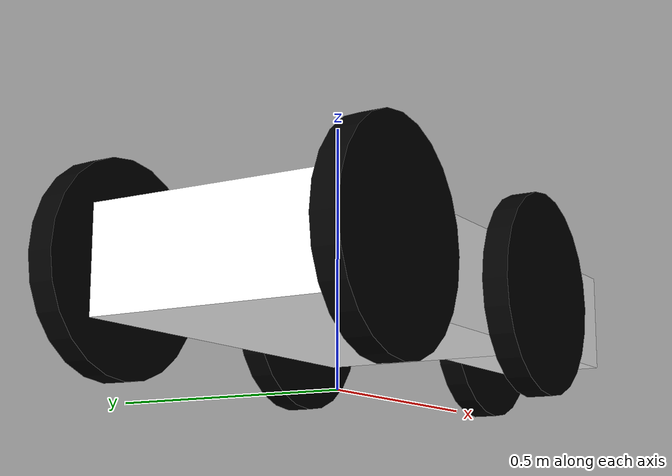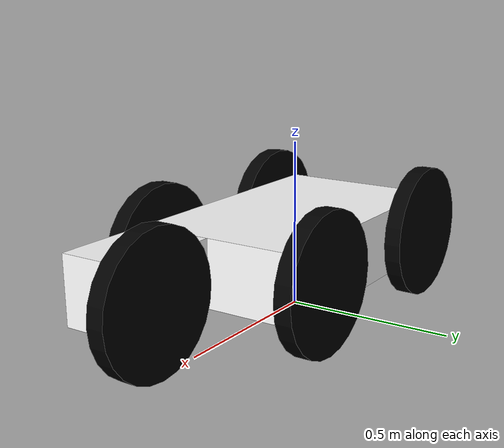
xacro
<?xml version="1.0"?>
<robot xmlns:xacro="http://www.ros.org/wiki/xacro" name="five_wheeler">

  <xacro:macro name="default_inertial" params="mass">
    <inertial>
      <mass value="${mass}" />
      <inertia ixx="1.0" ixy="0.0" ixz="0.0"
        iyy="1.0" iyz="0.0"
        izz="1.0" />
    </inertial>
  </xacro:macro>

  <material name="black">
    <color rgba="0 0 0 1"/>
  </material>
  <material name="white">
    <color rgba="1 1 1 1"/>
  </material>

  <xacro:property name="body_w" value="0.5" />
  <xacro:property name="body_l" value="0.8" />
  <xacro:property name="body_h" value="0.2" />
  <xacro:property name="wheel_r" value="0.2" />
  <xacro:property name="wheel_h" value="0.05" />
  <xacro:property name="wheel_offset" value="0.1" />
  <xacro:property name="body_height" value="0.2" />
  <xacro:property name="extension_l" value="0.2" />

  <link name="base_link" >
    <visual>
      <geometry>
        <box size="${body_l} ${body_w}  ${body_h}" />
      </geometry>
      <origin rpy="0 0 0" xyz="0 0 ${wheel_r}"/>
      <material name="white"/>
    </visual>
    <collision>
      <geometry>
        <box size="${body_l} ${body_h}  ${body_w}"/>
      </geometry>
      <origin rpy="0 0 0" xyz="0 0 ${wheel_r}"/>
    </collision>
    <xacro:default_inertial mass="10"/>
  </link>

  <link name="left_front_wheel">
    <visual>
        <geometry>
            <cylinder radius="${wheel_r}" length="${wheel_h}"/>
        </geometry>
        <origin rpy="0 ${pi/2} 0" xyz="${wheel_h/2} 0 0"/>
        <material name="black"/>
    </visual>
    <collision>
        <geometry>
            <cylinder radius="${wheel_r}" length="${wheel_h}"/>
        </geometry>
        <origin rpy="0 ${pi/2} 0" xyz="${wheel_h/2} 0 0"/>
    </collision>
    <xacro:default_inertial mass="10"/>
  </link>
  <joint name="base_to_left_front_wheel" type="continuous">
    <parent link="base_link"/>
    <child link="left_front_wheel"/>
    <origin rpy= "0 0 ${pi/2}" xyz="${body_l/2 - wheel_offset} ${body_w/2} ${wheel_r}"/>
  </joint>

  <link name="left_back_wheel">
    <visual>
        <geometry>
            <cylinder radius="${wheel_r}" length="${wheel_h}"/>
        </geometry>
        <origin rpy="0 ${pi/2} 0" xyz="${wheel_h/2} 0 0"/>
        <material name="black"/>
    </visual>
    <collision>
        <geometry>
            <cylinder radius="${wheel_r}" length="${wheel_h}"/>
        </geometry>
        <origin rpy="0 ${pi/2} 0" xyz="${wheel_h/2} 0 0"/>
    </collision>
    <xacro:default_inertial mass="10"/>
  </link>
  <joint name="base_to_right_front_wheel" type="continuous">
    <parent link="base_link"/>
    <child link="left_back_wheel"/>
    <origin rpy= "0 0 ${pi/2}" xyz="${-body_l/2 + wheel_offset} ${body_w/2} ${wheel_r}"/>
  </joint>

  <link name="right_front_wheel">
    <visual>
        <geometry>
            <cylinder radius="${wheel_r}" length="${wheel_h}"/>
        </geometry>
        <origin rpy="0 ${pi/2} 0" xyz="${-wheel_h/2} 0 0"/>
        <material name="black"/>
    </visual>
    <collision>
        <geometry>
            <cylinder radius="${wheel_r}" length="${wheel_h}"/>
        </geometry>
        <origin rpy="0 ${pi/2} 0" xyz="${-wheel_h/2} 0 0"/>
    </collision>
    <xacro:default_inertial mass="10"/>
  </link>
  <joint name="base_to_left_back_wheel" type="continuous">
    <parent link="base_link"/>
    <child link="right_front_wheel"/>
    <origin rpy= "0 0 ${pi/2}" xyz="${body_l/2 - wheel_offset} ${-body_w/2} ${wheel_r}"/>
  </joint>

  <link name="right_back_wheel">
    <visual>
        <geometry>
            <cylinder radius="${wheel_r}" length="${wheel_h}"/>
        </geometry>
        <origin rpy="0 ${pi/2} 0" xyz="${-wheel_h/2} 0 0"/>
        <material name="black"/>
    </visual>
    <collision>
        <geometry>
            <cylinder radius="${wheel_r}" length="${wheel_h}"/>
        </geometry>
        <origin rpy="0 ${pi/2} 0" xyz="${-wheel_h/2} 0 0"/>
    </collision>
    <xacro:default_inertial mass="10"/>
  </link>
  <joint name="base_to_right_back_wheel" type="continuous">
    <parent link="base_link"/>
    <child link="right_back_wheel"/>
    <origin rpy= "0 0 ${pi/2}" xyz="${-body_l/2 + wheel_offset} ${-body_w/2} ${wheel_r}"/>
  </joint>

  <link name="front_extension" >
    <visual>
      <geometry>
        <box size="${wheel_r+wheel_offset} ${body_w/2 - wheel_h/2}  ${body_h}" />
      </geometry>
      <origin rpy="0 0 0" xyz="${(wheel_r+wheel_offset)/2} ${(body_w/2 - wheel_h/2)/2} 0"/>
      <material name="white"/>
    </visual>
    <collision>
      <geometry>
        <box size="${wheel_r+wheel_offset} ${body_w/2 - wheel_h/2}  ${body_h}"/>
      </geometry>
      <origin rpy="0 0 0" xyz="${(wheel_r+wheel_offset)/2} ${(body_w/2 - wheel_h/2)/2} 0"/>
    </collision>
    <xacro:default_inertial mass="10"/>
  </link>
    <joint name="base_to_front extension" type="fixed">
    <parent link="base_link"/>
    <child link="front_extension"/>
    <origin xyz="${body_l/2} ${-body_w/2} ${wheel_r}"/>
  </joint>

  <link name="front_wheel">
    <visual>
        <geometry>
            <cylinder radius="${wheel_r}" length="${wheel_h}"/>
        </geometry>
        <origin rpy="0 ${pi/2} 0" xyz="${wheel_h/2} 0 0"/>
        <material name="black"/>
    </visual>
    <collision>
        <geometry>
            <cylinder radius="${wheel_r}" length="${wheel_h}"/>
        </geometry>
        <origin rpy="0 ${pi/2} 0" xyz="${wheel_h/2} 0 0"/>
    </collision>
    <xacro:default_inertial mass="10"/>
  </link>
  <joint name="extension_to_front_wheel" type="continuous">
    <parent link="front_extension"/>
    <child link="front_wheel"/>
    <origin rpy= "0 0 ${pi/2}" xyz="${wheel_r+wheel_offset/2} ${body_w/2 - wheel_h/2} 0"/>
  </joint>

  <link name="base_footprint" >
  </link>
  <joint name="base_footprint_to_base" type="fixed">
    <parent link="base_footprint"/>
    <child link="base_link"/>
  </joint>

</robot>
